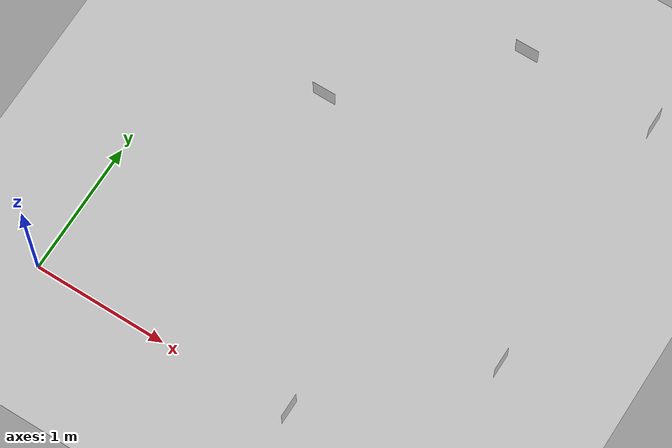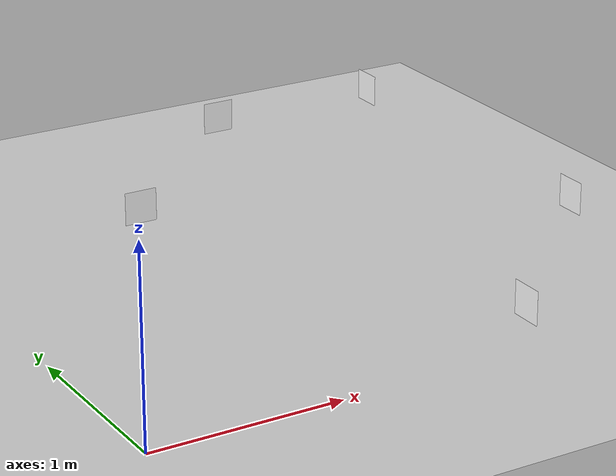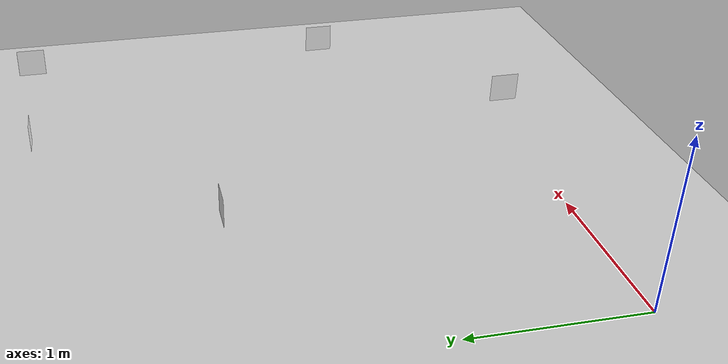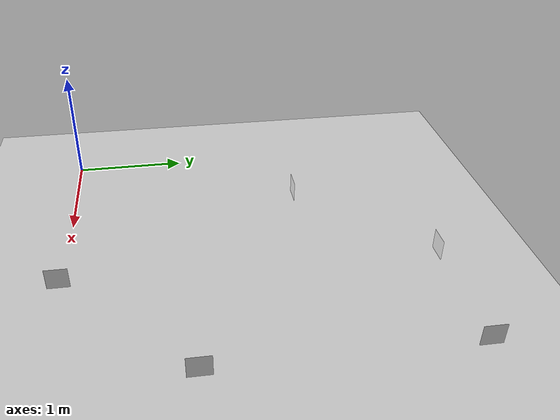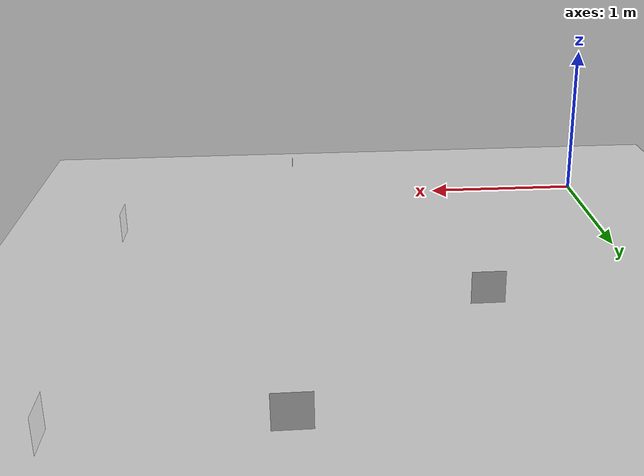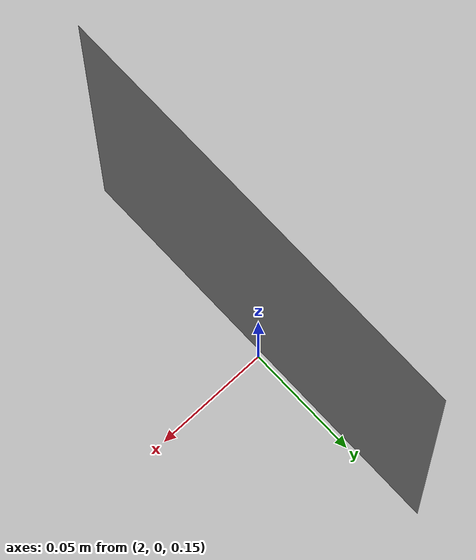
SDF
<sdf version="1.6">
  <world name="empty">
    <physics name="1ms" type="ignored">
      <max_step_size>0.001</max_step_size>
      <real_time_factor>1.0</real_time_factor>
    </physics>
    <plugin filename="ignition-gazebo-sensors-system" name="ignition::gazebo::systems::Sensors"/>
    <plugin filename="ignition-gazebo-physics-system" name="gz::sim::systems::Physics"/>
    <plugin filename="ignition-gazebo-user-commands-system" name="gz::sim::systems::UserCommands"/>
    <plugin filename="ignition-gazebo-scene-broadcaster-system" name="gz::sim::systems::SceneBroadcaster"/>
    <plugin filename="ignition-gazebo-contact-system" name="gz::sim::systems::Contact"/>

    <light type="directional" name="sun">
      <cast_shadows>true</cast_shadows>
      <pose>0 0 10 0 0 0</pose>
      <diffuse>0.8 0.8 0.8 1</diffuse>
      <specular>0.2 0.2 0.2 1</specular>
      <attenuation>
        <range>1000</range>
        <constant>0.9</constant>
        <linear>0.01</linear>
        <quadratic>0.001</quadratic>
      </attenuation>
      <direction>-0.5 0.1 -0.9</direction>
    </light>

    <model name="ground_plane">
      <static>true</static>
      <link name="link">
        <collision name="collision">
          <geometry>
            <plane>
              <normal>0 0 1</normal>
              <size>100 100</size>
            </plane>
          </geometry>
        </collision>
        <visual name="visual">
          <geometry>
            <plane>
              <normal>0 0 1</normal>
              <size>100 100</size>
            </plane>
          </geometry>
          <material>
            <ambient>0.8 0.8 0.8 1</ambient>
            <diffuse>0.8 0.8 0.8 1</diffuse>
            <specular>0.8 0.8 0.8 1</specular>
          </material>
        </visual>
      </link>
    </model>

    <!-- aruco_visual_marker_1: Instance 1 (2,0,0) -->
    <model name='aruco_visual_marker_1_0'>
      <pose>2.0 0.0 0 0 0 0</pose>
      <link name='marker'>
        <pose frame=''>0 0 0.25 0 4.712 0</pose>
        <visual name='visual'>
          <geometry>
            <box>
              <size>0.1778 0.1778 1e-5</size>
            </box>
          </geometry>
          <material>
            <ambient>1 1 1 1</ambient>
            <diffuse>1 1 1 1</diffuse>
            <specular>0 0 0 1</specular>
            <emissive>0 0 0 0</emissive>
            <pbr>
              <metal>
                <albedo_map>file:///home/asvin/models/aruco_visual_marker_1/materials/textures/aruco_mark_1.png</albedo_map>
              </metal>
            </pbr>
          </material>
          <pose frame=''>0 0 0 0 -0 0</pose>
          <cast_shadows>1</cast_shadows>
          <transparency>0</transparency>
        </visual>
        <collision name='collision'>
          <laser_retro>0</laser_retro>
          <max_contacts>10</max_contacts>
          <pose frame=''>0 0 0 0 -0 0</pose>
          <geometry>
            <box>
              <size>0.1778 0.1778 1e-05</size>
            </box>
          </geometry>
        </collision>
      </link>
      <link name='marker_pad'>
        <pose frame='marker'>0 0 -1e-5 0 -0 0</pose>
        <visual name='visual'>
          <geometry>
            <box>
              <size>0.1778 0.1778 1e-5</size>
            </box>
          </geometry>
          <material>
            <lighting>1</lighting>
            <ambient>0.3 0.3 0.3 1</ambient>
            <diffuse>0.7 0.7 0.7 1</diffuse>
            <specular>0.01 0.01 0.01 1</specular>
            <emissive>1 1 1 0</emissive>
          </material>
          <cast_shadows>1</cast_shadows>
          <transparency>0</transparency>
        </visual>
        <collision name='collision'>
          <laser_retro>0</laser_retro>
          <max_contacts>10</max_contacts>
          <pose frame=''>0 0 0 0 -0 0</pose>
          <geometry>
            <box>
              <size>0.1778 0.1778 1e-5</size>
            </box>
          </geometry>
        </collision>
      </link>
      <joint name='marker_JOINT_marker_pad' type='revolute'>
        <parent>marker</parent>
        <child>marker_pad</child>
        <pose frame=''>0 0 0 0 -0 0</pose>
        <axis>
          <xyz>0 0 1</xyz>
          <limit>
            <upper>0</upper>
            <lower>0</lower>
          </limit>
        </axis>
      </joint>
      <static>1</static>
      <allow_auto_disable>1</allow_auto_disable>
    </model>

    <!-- aruco_visual_marker_1: Instance 2 (3,1,0) -->
    <model name='aruco_visual_marker_1_1'>
      <pose>3.0 1.0 0 0 0 0</pose>
      <link name='marker'>
        <pose frame=''>0 0 0.25 0 4.712 0</pose>
        <visual name='visual'>
          <geometry>
            <box>
              <size>0.1778 0.1778 1e-5</size>
            </box>
          </geometry>
          <material>
            <ambient>1 1 1 1</ambient>
            <diffuse>1 1 1 1</diffuse>
            <specular>0 0 0 1</specular>
            <emissive>0 0 0 0</emissive>
            <pbr>
              <metal>
                <albedo_map>file:///home/asvin/models/aruco_visual_marker_1/materials/textures/aruco_mark_1.png</albedo_map>
              </metal>
            </pbr>
          </material>
          <pose frame=''>0 0 0 0 -0 0</pose>
          <cast_shadows>1</cast_shadows>
          <transparency>0</transparency>
        </visual>
        <collision name='collision'>
          <laser_retro>0</laser_retro>
          <max_contacts>10</max_contacts>
          <pose frame=''>0 0 0 0 -0 0</pose>
          <geometry>
            <box>
              <size>0.1778 0.1778 1e-05</size>
            </box>
          </geometry>
        </collision>
      </link>
      <link name='marker_pad'>
        <pose frame='marker'>0 0 -1e-5 0 -0 0</pose>
        <visual name='visual'>
          <geometry>
            <box>
              <size>0.1778 0.1778 1e-5</size>
            </box>
          </geometry>
          <material>
            <lighting>1</lighting>
            <ambient>0.3 0.3 0.3 1</ambient>
            <diffuse>0.7 0.7 0.7 1</diffuse>
            <specular>0.01 0.01 0.01 1</specular>
            <emissive>1 1 1 0</emissive>
          </material>
          <cast_shadows>1</cast_shadows>
          <transparency>0</transparency>
        </visual>
        <collision name='collision'>
          <laser_retro>0</laser_retro>
          <max_contacts>10</max_contacts>
          <pose frame=''>0 0 0 0 -0 0</pose>
          <geometry>
            <box>
              <size>0.1778 0.1778 1e-5</size>
            </box>
          </geometry>
        </collision>
      </link>
      <joint name='marker_JOINT_marker_pad' type='revolute'>
        <parent>marker</parent>
        <child>marker_pad</child>
        <pose frame=''>0 0 0 0 -0 0</pose>
        <axis>
          <xyz>0 0 1</xyz>
          <limit>
            <upper>0</upper>
            <lower>0</lower>
          </limit>
        </axis>
      </joint>
      <static>1</static>
      <allow_auto_disable>1</allow_auto_disable>
    </model>

    <!-- aruco_visual_marker_0: Instance 1 (1,2,1.571) -->
    <model name='aruco_visual_marker_0_0'>
      <pose>1.0 2.0 0 0 0 1.571</pose>
      <link name='marker'>
        <pose frame=''>0 0 0.25 0 4.712 0</pose>
        <visual name='visual'>
          <geometry>
            <box>
              <size>0.1778 0.1778 1e-5</size>
            </box>
          </geometry>
          <material>
            <ambient>1 1 1 1</ambient>
            <diffuse>1 1 1 1</diffuse>
            <specular>0 0 0 1</specular>
            <emissive>0 0 0 0</emissive>
            <pbr>
              <metal>
                <albedo_map>file:///home/asvin/models/aruco_visual_marker_0/materials/textures/aruco_mark_0.png</albedo_map>
              </metal>
            </pbr>
          </material>
          <pose frame=''>0 0 0 0 -0 0</pose>
          <cast_shadows>1</cast_shadows>
          <transparency>0</transparency>
        </visual>
        <collision name='collision'>
          <laser_retro>0</laser_retro>
          <max_contacts>10</max_contacts>
          <pose frame=''>0 0 0 0 -0 0</pose>
          <geometry>
            <box>
              <size>0.1778 0.1778 1e-05</size>
            </box>
          </geometry>
        </collision>
      </link>
      <link name='marker_pad'>
        <pose frame='marker'>0 0 -1e-5 0 -0 0</pose>
        <visual name='visual'>
          <geometry>
            <box>
              <size>0.1778 0.1778 1e-5</size>
            </box>
          </geometry>
          <material>
            <lighting>1</lighting>
            <ambient>0.3 0.3 0.3 1</ambient>
            <diffuse>0.7 0.7 0.7 1</diffuse>
            <specular>0.01 0.01 0.01 1</specular>
            <emissive>1 1 1 0</emissive>
          </material>
          <cast_shadows>1</cast_shadows>
          <transparency>0</transparency>
        </visual>
        <collision name='collision'>
          <laser_retro>0</laser_retro>
          <max_contacts>10</max_contacts>
          <pose frame=''>0 0 0 0 -0 0</pose>
          <geometry>
            <box>
              <size>0.1778 0.1778 1e-5</size>
            </box>
          </geometry>
        </collision>
      </link>
      <joint name='marker_JOINT_marker_pad' type='revolute'>
        <parent>marker</parent>
        <child>marker_pad</child>
        <pose frame=''>0 0 0 0 -0 0</pose>
        <axis>
          <xyz>0 0 1</xyz>
          <limit>
            <upper>0</upper>
            <lower>0</lower>
          </limit>
        </axis>
      </joint>
      <static>1</static>
      <allow_auto_disable>1</allow_auto_disable>
    </model>

    <!-- aruco_visual_marker_0: Instance 2 (2,3,1.571) -->
    <model name='aruco_visual_marker_0_1'>
      <pose>2.0 3.0 0 0 0 1.571</pose>
      <link name='marker'>
        <pose frame=''>0 0 0.25 0 4.712 0</pose>
        <visual name='visual'>
          <geometry>
            <box>
              <size>0.1778 0.1778 1e-5</size>
            </box>
          </geometry>
          <material>
            <ambient>1 1 1 1</ambient>
            <diffuse>1 1 1 1</diffuse>
            <specular>0 0 0 1</specular>
            <emissive>0 0 0 0</emissive>
            <pbr>
              <metal>
                <albedo_map>file:///home/asvin/models/aruco_visual_marker_0/materials/textures/aruco_mark_0.png</albedo_map>
              </metal>
            </pbr>
          </material>
          <pose frame=''>0 0 0 0 -0 0</pose>
          <cast_shadows>1</cast_shadows>
          <transparency>0</transparency>
        </visual>
        <collision name='collision'>
          <laser_retro>0</laser_retro>
          <max_contacts>10</max_contacts>
          <pose frame=''>0 0 0 0 -0 0</pose>
          <geometry>
            <box>
              <size>0.1778 0.1778 1e-05</size>
            </box>
          </geometry>
        </collision>
      </link>
      <link name='marker_pad'>
        <pose frame='marker'>0 0 -1e-5 0 -0 0</pose>
        <visual name='visual'>
          <geometry>
            <box>
              <size>0.1778 0.1778 1e-5</size>
            </box>
          </geometry>
          <material>
            <lighting>1</lighting>
            <ambient>0.3 0.3 0.3 1</ambient>
            <diffuse>0.7 0.7 0.7 1</diffuse>
            <specular>0.01 0.01 0.01 1</specular>
            <emissive>1 1 1 0</emissive>
          </material>
          <cast_shadows>1</cast_shadows>
          <transparency>0</transparency>
        </visual>
        <collision name='collision'>
          <laser_retro>0</laser_retro>
          <max_contacts>10</max_contacts>
          <pose frame=''>0 0 0 0 -0 0</pose>
          <geometry>
            <box>
              <size>0.1778 0.1778 1e-5</size>
            </box>
          </geometry>
        </collision>
      </link>
      <joint name='marker_JOINT_marker_pad' type='revolute'>
        <parent>marker</parent>
        <child>marker_pad</child>
        <pose frame=''>0 0 0 0 -0 0</pose>
        <axis>
          <xyz>0 0 1</xyz>
          <limit>
            <upper>0</upper>
            <lower>0</lower>
          </limit>
        </axis>
      </joint>
      <static>1</static>
      <allow_auto_disable>1</allow_auto_disable>
    </model>

    <!-- aruco_visual_marker_0: Instance 3 (4,3,0) -->
    <model name='aruco_visual_marker_0_2'>
      <pose>3.0 3.0 0 0 0 0</pose>
      <link name='marker'>
        <pose frame=''>0 0 0.25 0 4.712 0</pose>
        <visual name='visual'>
          <geometry>
            <box>
              <size>0.1778 0.1778 1e-5</size>
            </box>
          </geometry>
          <material>
            <ambient>1 1 1 1</ambient>
            <diffuse>1 1 1 1</diffuse>
            <specular>0 0 0 1</specular>
            <emissive>0 0 0 0</emissive>
            <pbr>
              <metal>
                <albedo_map>file:///home/asvin/models/aruco_visual_marker_0/materials/textures/aruco_mark_0.png</albedo_map>
              </metal>
            </pbr>
          </material>
          <pose frame=''>0 0 0 0 -0 0</pose>
          <cast_shadows>1</cast_shadows>
          <transparency>0</transparency>
        </visual>
        <collision name='collision'>
          <laser_retro>0</laser_retro>
          <max_contacts>10</max_contacts>
          <pose frame=''>0 0 0 0 -0 0</pose>
          <geometry>
            <box>
              <size>0.1778 0.1778 1e-05</size>
            </box>
          </geometry>
        </collision>
      </link>
      <link name='marker_pad'>
        <pose frame='marker'>0 0 -1e-5 0 -0 0</pose>
        <visual name='visual'>
          <geometry>
            <box>
              <size>0.1778 0.1778 1e-5</size>
            </box>
          </geometry>
          <material>
            <lighting>1</lighting>
            <ambient>0.3 0.3 0.3 1</ambient>
            <diffuse>0.7 0.7 0.7 1</diffuse>
            <specular>0.01 0.01 0.01 1</specular>
            <emissive>1 1 1 0</emissive>
          </material>
          <cast_shadows>1</cast_shadows>
          <transparency>0</transparency>
        </visual>
        <collision name='collision'>
          <laser_retro>0</laser_retro>
          <max_contacts>10</max_contacts>
          <pose frame=''>0 0 0 0 -0 0</pose>
          <geometry>
            <box>
              <size>0.1778 0.1778 1e-5</size>
            </box>
          </geometry>
        </collision>
      </link>
      <joint name='marker_JOINT_marker_pad' type='revolute'>
        <parent>marker</parent>
        <child>marker_pad</child>
        <pose frame=''>0 0 0 0 -0 0</pose>
        <axis>
          <xyz>0 0 1</xyz>
          <limit>
            <upper>0</upper>
            <lower>0</lower>
          </limit>
        </axis>
      </joint>
      <static>1</static>
      <allow_auto_disable>1</allow_auto_disable>
    </model>
  </world>
</sdf>
